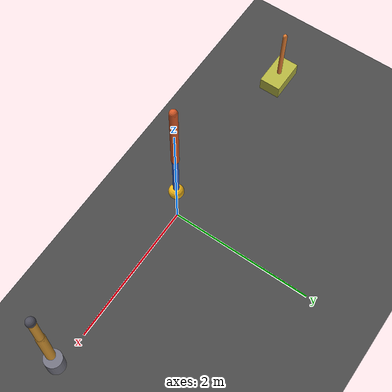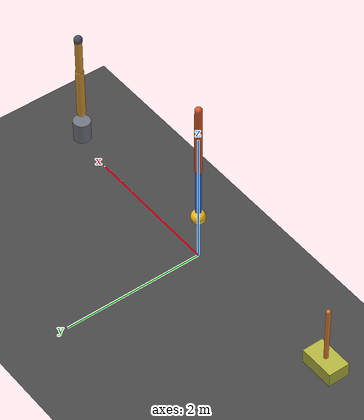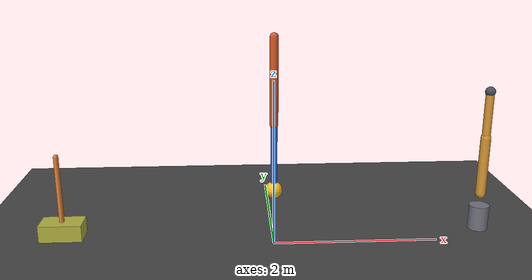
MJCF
<mujoco model="demo_scene">
  <option timestep="0.005" gravity="0 0 -9.81"/>
  <default><joint damping="0.5"/><geom friction="0.8 0.02 0.02"/></default>
  <asset>
    <texture name="grid" type="2d" builtin="checker" width="512" height="512" rgb1="0.35 0.35 0.35" rgb2="0.2 0.2 0.2"/>
    <material name="grid" texture="grid" texrepeat="8 8" reflectance="0.1"/>
  </asset>
  <worldbody>
    <light pos="0 0 5" dir="0 0 -1" diffuse="0.9 0.9 0.9"/>
    <geom name="floor" type="plane" size="5 5 0.1" material="grid"/>
    <body name="pendulum_base" pos="0 0 2.5">
      <joint name="pend1" type="hinge" axis="0 1 0" damping="0.2"/>
      <geom type="capsule" fromto="0 0 0 0 0 -1" size="0.05" rgba="0.85 0.35 0.15 1" mass="0.5"/>
      <body name="pend_mid" pos="0 0 -1">
        <joint name="pend2" type="hinge" axis="0 1 0" damping="0.1"/>
        <geom type="capsule" fromto="0 0 0 0 0 -0.8" size="0.04" rgba="0.2 0.4 0.85 1" mass="0.3"/>
        <geom name="pend_bob" type="sphere" pos="0 0 -0.8" size="0.1" rgba="1 0.75 0.1 1" mass="1"/>
      </body>
    </body>
    <body name="arm_base" pos="2.5 0 0.3">
      <joint name="arm_yaw" type="hinge" axis="0 0 1" damping="2"/>
      <geom type="cylinder" size="0.12 0.15" rgba="0.45 0.45 0.5 1"/>
      <body name="arm_shoulder" pos="0 0 0.3">
        <joint name="arm_pitch" type="hinge" axis="0 1 0" range="-90 45" damping="1"/>
        <geom type="capsule" fromto="0 0 0 0 0 0.7" size="0.06" rgba="0.85 0.6 0.2 1"/>
        <body name="arm_elbow" pos="0 0 0.7">
          <joint name="arm_elbow" type="hinge" axis="0 1 0" range="-135 0" damping="0.5"/>
          <geom type="capsule" fromto="0 0 0 0 0 0.55" size="0.05" rgba="0.85 0.6 0.2 1"/>
          <body name="arm_wrist" pos="0 0 0.55">
            <joint name="arm_wrist" type="hinge" axis="0 0 1" damping="0.3"/>
            <geom type="sphere" size="0.06" rgba="0.3 0.3 0.35 1"/>
          </body>
        </body>
      </body>
    </body>
    <body name="cart" pos="-2.5 0 0.25">
      <joint name="cart_x" type="slide" axis="1 0 0" range="-2 2" damping="0.5"/>
      <geom type="box" size="0.25 0.15 0.1" rgba="0.7 0.7 0.25 1" mass="1"/>
      <body name="pole" pos="0 0 0.1">
        <joint name="pole_hinge" type="hinge" axis="0 1 0" damping="0.05"/>
        <geom type="capsule" fromto="0 0 0 0 0 0.8" size="0.03" rgba="0.9 0.5 0.2 1" mass="0.3"/>
      </body>
    </body>
  </worldbody>
  <actuator><motor name="cart_force" joint="cart_x" ctrlrange="-50 50" ctrllimited="true"/></actuator>
  <sensor>
    <jointpos name="pend1_pos" joint="pend1"/>
    <jointvel name="pend1_vel" joint="pend1"/>
    <jointpos name="pend2_pos" joint="pend2"/>
    <jointvel name="pend2_vel" joint="pend2"/>
    <jointpos name="cart_pos" joint="cart_x"/>
    <jointvel name="cart_vel" joint="cart_x"/>
    <jointpos name="pole_angle" joint="pole_hinge"/>
    <jointvel name="pole_vel" joint="pole_hinge"/>
    <actuatorpos name="cart_act_pos" actuator="cart_force"/>
    <actuatorfrc name="cart_act_frc" actuator="cart_force"/>
    <framepos name="pend_bob_pos" objtype="geom" objname="pend_bob"/>
    <framepos name="arm_wrist_pos" objtype="body" objname="arm_wrist"/>
  </sensor>
</mujoco>
